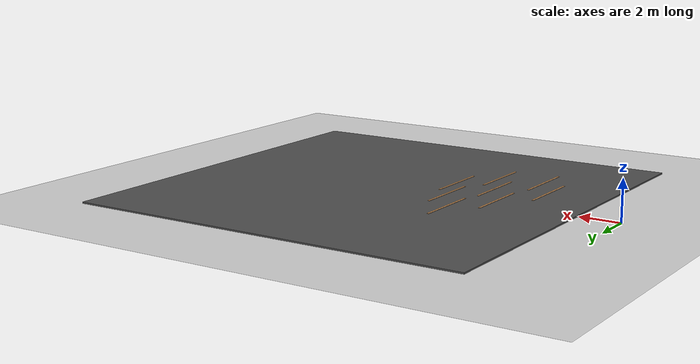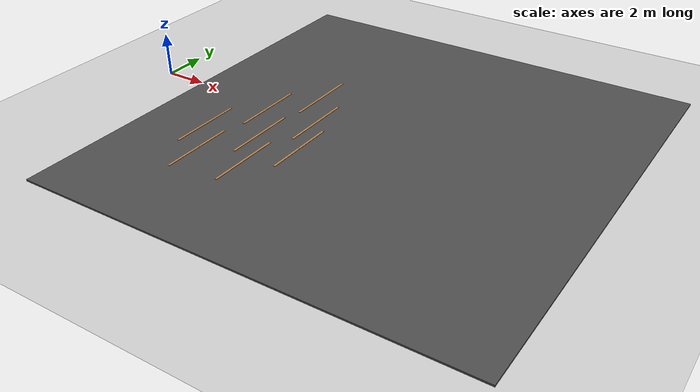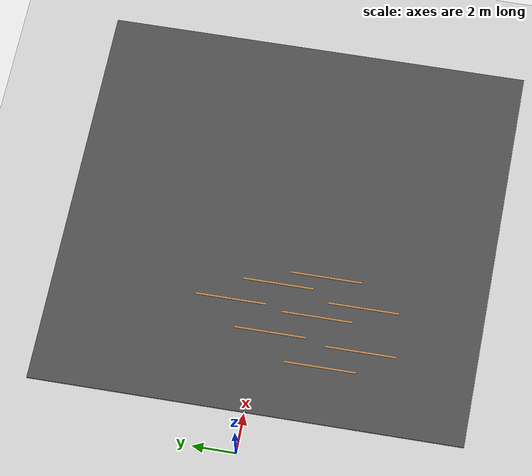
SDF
<sdf version="1.7">
 <world name="default">
  <model name="ground_plane">
   <static>1</static>
   <link name="link">
    <collision name="collision">
     <geometry><plane><normal>0 0 1</normal><size>100 100</size></plane></geometry>
     <surface><friction><ode><mu>100</mu><mu2>50</mu2></ode></friction></surface>
    </collision>
    <visual name="visual">
     <cast_shadows>0</cast_shadows>
     <geometry><plane><normal>0 0 1</normal><size>100 100</size></plane></geometry>
     <material>
      <script><uri>file://media/materials/scripts/gazebo.material</uri><name>Gazebo/Grey</name></script>
     </material>
    </visual>
   </link>
  </model>
  <model name="asphalt_plane">
   <static>1</static>
   <link name="link">
    <collision name="collision"><geometry><box><size>20 20 0.1</size></box></geometry></collision>
    <visual name="visual">
     <cast_shadows>0</cast_shadows>
     <geometry><box><size>20 20 0.1</size></box></geometry>
     <material>
      <script>
       <uri>model://asphalt_plane/materials/scripts</uri>
       <uri>model://asphalt_plane/materials/textures</uri>
       <name>vrc/asphalt</name>
      </script>
     </material>
    </visual>
   </link>
   <pose>12.0553 0.030976 0 0 -0 0</pose>
  </model>
  <model name="wooden_board4">
   <link name="base">
    <pose>-0 -0 0.00523 0 -0 0</pose>
    <inertial>
     <mass>0.2765</mass>
     <inertia>
      <ixx>0.0025148</ixx>
      <ixy>0</ixy>
      <ixz>0</ixz>
      <iyy>0.00024037</iyy>
      <iyz>0</iyz>
      <izz>0.00275013</izz>
     </inertia>
    </inertial>
    <visual name="visual">
     <geometry><box><size>0.1016 3.3302 0.02046</size></box></geometry>
     <material>
      <script><uri>file://media/materials/scripts/gazebo.material</uri><name>Gazebo/Wood</name></script>
      <shader type="pixel"><normal_map>__default__</normal_map></shader>
      <ambient>1 1 1 1</ambient>
      <diffuse>1 1 1 1</diffuse>
      <specular>0.2 0.2 0.2 1</specular>
      <emissive>0 0 0 1</emissive>
     </material>
    </visual>
    <visual name="tee_nut_1">
     <pose>0 -0.116 0 0 -0 0</pose>
     <geometry><cylinder><radius>0.00635</radius><length>0.020565</length></cylinder></geometry>
     <material>
      <script><uri>file://media/materials/scripts/gazebo.material</uri><name>Gazebo/Grey</name></script>
      <shader type="pixel"><normal_map>__default__</normal_map></shader>
      <ambient>0.3 0.3 0.3 1</ambient>
      <diffuse>0.7 0.7 0.7 1</diffuse>
      <specular>0.01 0.01 0.01 1</specular>
      <emissive>0 0 0 1</emissive>
     </material>
    </visual>
    <visual name="tee_nut_3">
     <pose>0 0.038 0 0 -0 0</pose>
     <geometry><cylinder><radius>0.00635</radius><length>0.020565</length></cylinder></geometry>
     <material>
      <script><uri>file://media/materials/scripts/gazebo.material</uri><name>Gazebo/Grey</name></script>
      <shader type="pixel"><normal_map>__default__</normal_map></shader>
      <ambient>0.3 0.3 0.3 1</ambient>
      <diffuse>0.7 0.7 0.7 1</diffuse>
      <specular>0.01 0.01 0.01 1</specular>
      <emissive>0 0 0 1</emissive>
     </material>
    </visual>
    <visual name="tee_nut_2">
     <pose>0 -0.038 0 0 -0 0</pose>
     <geometry><cylinder><radius>0.00635</radius><length>0.020565</length></cylinder></geometry>
     <material>
      <script><uri>file://media/materials/scripts/gazebo.material</uri><name>Gazebo/Grey</name></script>
      <shader type="pixel"><normal_map>__default__</normal_map></shader>
      <ambient>0.3 0.3 0.3 1</ambient>
      <diffuse>0.7 0.7 0.7 1</diffuse>
      <specular>0.01 0.01 0.01 1</specular>
      <emissive>0 0 0 1</emissive>
     </material>
    </visual>
    <visual name="tee_nut_4">
     <pose>0 0.116 0 0 -0 0</pose>
     <geometry><cylinder><radius>0.00635</radius><length>0.020565</length></cylinder></geometry>
     <material>
      <script><uri>file://media/materials/scripts/gazebo.material</uri><name>Gazebo/Grey</name></script>
      <shader type="pixel"><normal_map>__default__</normal_map></shader>
      <ambient>0.3 0.3 0.3 1</ambient>
      <diffuse>0.7 0.7 0.7 1</diffuse>
      <specular>0.01 0.01 0.01 1</specular>
      <emissive>0 0 0 1</emissive>
     </material>
    </visual>
    <collision name="collision">
     <geometry><box><size>0.1016 0.3302 0.04046</size></box></geometry>
     <surface>
      <friction>
       <ode><mu>1</mu><mu2>1</mu2><fdir1>0 0 0</fdir1><slip1>0</slip1><slip2>0</slip2></ode>
       <torsional>
        <coefficient>1</coefficient>
        <patch_radius>0</patch_radius>
        <surface_radius>0.01</surface_radius>
        <use_patch_radius>0</use_patch_radius>
        <ode><slip>0</slip></ode>
       </torsional>
      </friction>
      <bounce><restitution_coefficient>0</restitution_coefficient><threshold>1e+06</threshold></bounce>
      <contact>
       <collide_without_contact>0</collide_without_contact>
       <collide_without_contact_bitmask>1</collide_without_contact_bitmask>
       <collide_bitmask>1</collide_bitmask>
       <ode>
        <soft_cfm>0</soft_cfm>
        <soft_erp>0.2</soft_erp>
        <kp>100000</kp>
        <kd>100</kd>
        <max_vel>100</max_vel>
        <min_depth>0.001</min_depth>
       </ode>
       <bullet>
        <split_impulse>1</split_impulse>
        <split_impulse_penetration_threshold>-0.01</split_impulse_penetration_threshold>
        <soft_cfm>0</soft_cfm>
        <soft_erp>0.2</soft_erp>
        <kp>100000</kp>
        <kd>100</kd>
       </bullet>
      </contact>
     </surface>
    </collision>
   </link>
   <static>0</static>
   <pose>4.89768 -2.95722 0.063993 0 -0 2.5e-05</pose>
  </model>
  <model name="wooden_board4_1">
   <link name="base">
    <pose>-0 -0 0.00523 0 -0 0</pose>
    <inertial>
     <mass>0.2765</mass>
     <inertia>
      <ixx>0.0025148</ixx>
      <ixy>0</ixy>
      <ixz>0</ixz>
      <iyy>0.00024037</iyy>
      <iyz>0</iyz>
      <izz>0.00275013</izz>
     </inertia>
    </inertial>
    <visual name="visual">
     <geometry><box><size>0.1016 3.3302 0.02046</size></box></geometry>
     <material>
      <script><uri>file://media/materials/scripts/gazebo.material</uri><name>Gazebo/Wood</name></script>
      <shader type="pixel"><normal_map>__default__</normal_map></shader>
      <ambient>1 1 1 1</ambient>
      <diffuse>1 1 1 1</diffuse>
      <specular>0.2 0.2 0.2 1</specular>
      <emissive>0 0 0 1</emissive>
     </material>
    </visual>
    <visual name="tee_nut_1">
     <pose>0 -0.116 0 0 -0 0</pose>
     <geometry><cylinder><radius>0.00635</radius><length>0.020565</length></cylinder></geometry>
     <material>
      <script><uri>file://media/materials/scripts/gazebo.material</uri><name>Gazebo/Grey</name></script>
      <shader type="pixel"><normal_map>__default__</normal_map></shader>
      <ambient>0.3 0.3 0.3 1</ambient>
      <diffuse>0.7 0.7 0.7 1</diffuse>
      <specular>0.01 0.01 0.01 1</specular>
      <emissive>0 0 0 1</emissive>
     </material>
    </visual>
    <visual name="tee_nut_3">
     <pose>0 0.038 0 0 -0 0</pose>
     <geometry><cylinder><radius>0.00635</radius><length>0.020565</length></cylinder></geometry>
     <material>
      <script><uri>file://media/materials/scripts/gazebo.material</uri><name>Gazebo/Grey</name></script>
      <shader type="pixel"><normal_map>__default__</normal_map></shader>
      <ambient>0.3 0.3 0.3 1</ambient>
      <diffuse>0.7 0.7 0.7 1</diffuse>
      <specular>0.01 0.01 0.01 1</specular>
      <emissive>0 0 0 1</emissive>
     </material>
    </visual>
    <visual name="tee_nut_2">
     <pose>0 -0.038 0 0 -0 0</pose>
     <geometry><cylinder><radius>0.00635</radius><length>0.020565</length></cylinder></geometry>
     <material>
      <script><uri>file://media/materials/scripts/gazebo.material</uri><name>Gazebo/Grey</name></script>
      <shader type="pixel"><normal_map>__default__</normal_map></shader>
      <ambient>0.3 0.3 0.3 1</ambient>
      <diffuse>0.7 0.7 0.7 1</diffuse>
      <specular>0.01 0.01 0.01 1</specular>
      <emissive>0 0 0 1</emissive>
     </material>
    </visual>
    <visual name="tee_nut_4">
     <pose>0 0.116 0 0 -0 0</pose>
     <geometry><cylinder><radius>0.00635</radius><length>0.020565</length></cylinder></geometry>
     <material>
      <script><uri>file://media/materials/scripts/gazebo.material</uri><name>Gazebo/Grey</name></script>
      <shader type="pixel"><normal_map>__default__</normal_map></shader>
      <ambient>0.3 0.3 0.3 1</ambient>
      <diffuse>0.7 0.7 0.7 1</diffuse>
      <specular>0.01 0.01 0.01 1</specular>
      <emissive>0 0 0 1</emissive>
     </material>
    </visual>
    <collision name="collision">
     <geometry><box><size>0.1016 0.3302 0.04046</size></box></geometry>
     <surface>
      <friction>
       <ode><mu>1</mu><mu2>1</mu2><fdir1>0 0 0</fdir1><slip1>0</slip1><slip2>0</slip2></ode>
       <torsional>
        <coefficient>1</coefficient>
        <patch_radius>0</patch_radius>
        <surface_radius>0.01</surface_radius>
        <use_patch_radius>0</use_patch_radius>
        <ode><slip>0</slip></ode>
       </torsional>
      </friction>
      <bounce><restitution_coefficient>0</restitution_coefficient><threshold>1e+06</threshold></bounce>
      <contact>
       <collide_without_contact>0</collide_without_contact>
       <collide_without_contact_bitmask>1</collide_without_contact_bitmask>
       <collide_bitmask>1</collide_bitmask>
       <ode>
        <soft_cfm>0</soft_cfm>
        <soft_erp>0.2</soft_erp>
        <kp>100000</kp>
        <kd>100</kd>
        <max_vel>100</max_vel>
        <min_depth>0.001</min_depth>
       </ode>
       <bullet>
        <split_impulse>1</split_impulse>
        <split_impulse_penetration_threshold>-0.01</split_impulse_penetration_threshold>
        <soft_cfm>0</soft_cfm>
        <soft_erp>0.2</soft_erp>
        <kp>100000</kp>
        <kd>100</kd>
       </bullet>
      </contact>
     </surface>
    </collision>
   </link>
   <static>0</static>
   <pose>6.2785 -0.414987 0.063993 0 -0 2.5e-05</pose>
  </model>
  <model name="wooden_board4_4">
   <link name="base">
    <pose>-0 -0 0.00523 0 -0 0</pose>
    <inertial>
     <mass>0.2765</mass>
     <inertia>
      <ixx>0.0025148</ixx>
      <ixy>0</ixy>
      <ixz>0</ixz>
      <iyy>0.00024037</iyy>
      <iyz>0</iyz>
      <izz>0.00275013</izz>
     </inertia>
    </inertial>
    <visual name="visual">
     <geometry><box><size>0.1016 3.3302 0.02046</size></box></geometry>
     <material>
      <script><uri>file://media/materials/scripts/gazebo.material</uri><name>Gazebo/Wood</name></script>
      <shader type="pixel"><normal_map>__default__</normal_map></shader>
      <ambient>1 1 1 1</ambient>
      <diffuse>1 1 1 1</diffuse>
      <specular>0.2 0.2 0.2 1</specular>
      <emissive>0 0 0 1</emissive>
     </material>
    </visual>
    <visual name="tee_nut_1">
     <pose>0 -0.116 0 0 -0 0</pose>
     <geometry><cylinder><radius>0.00635</radius><length>0.020565</length></cylinder></geometry>
     <material>
      <script><uri>file://media/materials/scripts/gazebo.material</uri><name>Gazebo/Grey</name></script>
      <shader type="pixel"><normal_map>__default__</normal_map></shader>
      <ambient>0.3 0.3 0.3 1</ambient>
      <diffuse>0.7 0.7 0.7 1</diffuse>
      <specular>0.01 0.01 0.01 1</specular>
      <emissive>0 0 0 1</emissive>
     </material>
    </visual>
    <visual name="tee_nut_3">
     <pose>0 0.038 0 0 -0 0</pose>
     <geometry><cylinder><radius>0.00635</radius><length>0.020565</length></cylinder></geometry>
     <material>
      <script><uri>file://media/materials/scripts/gazebo.material</uri><name>Gazebo/Grey</name></script>
      <shader type="pixel"><normal_map>__default__</normal_map></shader>
      <ambient>0.3 0.3 0.3 1</ambient>
      <diffuse>0.7 0.7 0.7 1</diffuse>
      <specular>0.01 0.01 0.01 1</specular>
      <emissive>0 0 0 1</emissive>
     </material>
    </visual>
    <visual name="tee_nut_2">
     <pose>0 -0.038 0 0 -0 0</pose>
     <geometry><cylinder><radius>0.00635</radius><length>0.020565</length></cylinder></geometry>
     <material>
      <script><uri>file://media/materials/scripts/gazebo.material</uri><name>Gazebo/Grey</name></script>
      <shader type="pixel"><normal_map>__default__</normal_map></shader>
      <ambient>0.3 0.3 0.3 1</ambient>
      <diffuse>0.7 0.7 0.7 1</diffuse>
      <specular>0.01 0.01 0.01 1</specular>
      <emissive>0 0 0 1</emissive>
     </material>
    </visual>
    <visual name="tee_nut_4">
     <pose>0 0.116 0 0 -0 0</pose>
     <geometry><cylinder><radius>0.00635</radius><length>0.020565</length></cylinder></geometry>
     <material>
      <script><uri>file://media/materials/scripts/gazebo.material</uri><name>Gazebo/Grey</name></script>
      <shader type="pixel"><normal_map>__default__</normal_map></shader>
      <ambient>0.3 0.3 0.3 1</ambient>
      <diffuse>0.7 0.7 0.7 1</diffuse>
      <specular>0.01 0.01 0.01 1</specular>
      <emissive>0 0 0 1</emissive>
     </material>
    </visual>
    <collision name="collision">
     <geometry><box><size>0.1016 0.3302 0.04046</size></box></geometry>
     <surface>
      <friction>
       <ode><mu>1</mu><mu2>1</mu2><fdir1>0 0 0</fdir1><slip1>0</slip1><slip2>0</slip2></ode>
       <torsional>
        <coefficient>1</coefficient>
        <patch_radius>0</patch_radius>
        <surface_radius>0.01</surface_radius>
        <use_patch_radius>0</use_patch_radius>
        <ode><slip>0</slip></ode>
       </torsional>
      </friction>
      <bounce><restitution_coefficient>0</restitution_coefficient><threshold>1e+06</threshold></bounce>
      <contact>
       <collide_without_contact>0</collide_without_contact>
       <collide_without_contact_bitmask>1</collide_without_contact_bitmask>
       <collide_bitmask>1</collide_bitmask>
       <ode>
        <soft_cfm>0</soft_cfm>
        <soft_erp>0.2</soft_erp>
        <kp>100000</kp>
        <kd>100</kd>
        <max_vel>100</max_vel>
        <min_depth>0.001</min_depth>
       </ode>
       <bullet>
        <split_impulse>1</split_impulse>
        <split_impulse_penetration_threshold>-0.01</split_impulse_penetration_threshold>
        <soft_cfm>0</soft_cfm>
        <soft_erp>0.2</soft_erp>
        <kp>100000</kp>
        <kd>100</kd>
       </bullet>
      </contact>
     </surface>
    </collision>
   </link>
   <static>0</static>
   <pose>5.99368 -4.64442 0.063993 0 -0 2.5e-05</pose>
  </model>
  <model name="wooden_board4_5">
   <link name="base">
    <pose>-0 -0 0.00523 0 -0 0</pose>
    <inertial>
     <mass>0.2765</mass>
     <inertia>
      <ixx>0.0025148</ixx>
      <ixy>0</ixy>
      <ixz>0</ixz>
      <iyy>0.00024037</iyy>
      <iyz>0</iyz>
      <izz>0.00275013</izz>
     </inertia>
    </inertial>
    <visual name="visual">
     <geometry><box><size>0.1016 3.3302 0.02046</size></box></geometry>
     <material>
      <script><uri>file://media/materials/scripts/gazebo.material</uri><name>Gazebo/Wood</name></script>
      <shader type="pixel"><normal_map>__default__</normal_map></shader>
      <ambient>1 1 1 1</ambient>
      <diffuse>1 1 1 1</diffuse>
      <specular>0.2 0.2 0.2 1</specular>
      <emissive>0 0 0 1</emissive>
     </material>
    </visual>
    <visual name="tee_nut_1">
     <pose>0 -0.116 0 0 -0 0</pose>
     <geometry><cylinder><radius>0.00635</radius><length>0.020565</length></cylinder></geometry>
     <material>
      <script><uri>file://media/materials/scripts/gazebo.material</uri><name>Gazebo/Grey</name></script>
      <shader type="pixel"><normal_map>__default__</normal_map></shader>
      <ambient>0.3 0.3 0.3 1</ambient>
      <diffuse>0.7 0.7 0.7 1</diffuse>
      <specular>0.01 0.01 0.01 1</specular>
      <emissive>0 0 0 1</emissive>
     </material>
    </visual>
    <visual name="tee_nut_3">
     <pose>0 0.038 0 0 -0 0</pose>
     <geometry><cylinder><radius>0.00635</radius><length>0.020565</length></cylinder></geometry>
     <material>
      <script><uri>file://media/materials/scripts/gazebo.material</uri><name>Gazebo/Grey</name></script>
      <shader type="pixel"><normal_map>__default__</normal_map></shader>
      <ambient>0.3 0.3 0.3 1</ambient>
      <diffuse>0.7 0.7 0.7 1</diffuse>
      <specular>0.01 0.01 0.01 1</specular>
      <emissive>0 0 0 1</emissive>
     </material>
    </visual>
    <visual name="tee_nut_2">
     <pose>0 -0.038 0 0 -0 0</pose>
     <geometry><cylinder><radius>0.00635</radius><length>0.020565</length></cylinder></geometry>
     <material>
      <script><uri>file://media/materials/scripts/gazebo.material</uri><name>Gazebo/Grey</name></script>
      <shader type="pixel"><normal_map>__default__</normal_map></shader>
      <ambient>0.3 0.3 0.3 1</ambient>
      <diffuse>0.7 0.7 0.7 1</diffuse>
      <specular>0.01 0.01 0.01 1</specular>
      <emissive>0 0 0 1</emissive>
     </material>
    </visual>
    <visual name="tee_nut_4">
     <pose>0 0.116 0 0 -0 0</pose>
     <geometry><cylinder><radius>0.00635</radius><length>0.020565</length></cylinder></geometry>
     <material>
      <script><uri>file://media/materials/scripts/gazebo.material</uri><name>Gazebo/Grey</name></script>
      <shader type="pixel"><normal_map>__default__</normal_map></shader>
      <ambient>0.3 0.3 0.3 1</ambient>
      <diffuse>0.7 0.7 0.7 1</diffuse>
      <specular>0.01 0.01 0.01 1</specular>
      <emissive>0 0 0 1</emissive>
     </material>
    </visual>
    <collision name="collision">
     <geometry><box><size>0.1016 0.3302 0.04046</size></box></geometry>
     <surface>
      <friction>
       <ode><mu>1</mu><mu2>1</mu2><fdir1>0 0 0</fdir1><slip1>0</slip1><slip2>0</slip2></ode>
       <torsional>
        <coefficient>1</coefficient>
        <patch_radius>0</patch_radius>
        <surface_radius>0.01</surface_radius>
        <use_patch_radius>0</use_patch_radius>
        <ode><slip>0</slip></ode>
       </torsional>
      </friction>
      <bounce><restitution_coefficient>0</restitution_coefficient><threshold>1e+06</threshold></bounce>
      <contact>
       <collide_without_contact>0</collide_without_contact>
       <collide_without_contact_bitmask>1</collide_without_contact_bitmask>
       <collide_bitmask>1</collide_bitmask>
       <ode>
        <soft_cfm>0</soft_cfm>
        <soft_erp>0.2</soft_erp>
        <kp>100000</kp>
        <kd>100</kd>
        <max_vel>100</max_vel>
        <min_depth>0.001</min_depth>
       </ode>
       <bullet>
        <split_impulse>1</split_impulse>
        <split_impulse_penetration_threshold>-0.01</split_impulse_penetration_threshold>
        <soft_cfm>0</soft_cfm>
        <soft_erp>0.2</soft_erp>
        <kp>100000</kp>
        <kd>100</kd>
       </bullet>
      </contact>
     </surface>
    </collision>
   </link>
   <static>0</static>
   <pose>7.4396 -2.38898 0.063993 0 -0 2.5e-05</pose>
  </model>
  <model name="wooden_board4_6">
   <link name="base">
    <pose>-0 -0 0.00523 0 -0 0</pose>
    <inertial>
     <mass>0.2765</mass>
     <inertia>
      <ixx>0.0025148</ixx>
      <ixy>0</ixy>
      <ixz>0</ixz>
      <iyy>0.00024037</iyy>
      <iyz>0</iyz>
      <izz>0.00275013</izz>
     </inertia>
    </inertial>
    <visual name="visual">
     <geometry><box><size>0.1016 3.3302 0.02046</size></box></geometry>
     <material>
      <script><uri>file://media/materials/scripts/gazebo.material</uri><name>Gazebo/Wood</name></script>
      <shader type="pixel"><normal_map>__default__</normal_map></shader>
      <ambient>1 1 1 1</ambient>
      <diffuse>1 1 1 1</diffuse>
      <specular>0.2 0.2 0.2 1</specular>
      <emissive>0 0 0 1</emissive>
     </material>
    </visual>
    <visual name="tee_nut_1">
     <pose>0 -0.116 0 0 -0 0</pose>
     <geometry><cylinder><radius>0.00635</radius><length>0.020565</length></cylinder></geometry>
     <material>
      <script><uri>file://media/materials/scripts/gazebo.material</uri><name>Gazebo/Grey</name></script>
      <shader type="pixel"><normal_map>__default__</normal_map></shader>
      <ambient>0.3 0.3 0.3 1</ambient>
      <diffuse>0.7 0.7 0.7 1</diffuse>
      <specular>0.01 0.01 0.01 1</specular>
      <emissive>0 0 0 1</emissive>
     </material>
    </visual>
    <visual name="tee_nut_3">
     <pose>0 0.038 0 0 -0 0</pose>
     <geometry><cylinder><radius>0.00635</radius><length>0.020565</length></cylinder></geometry>
     <material>
      <script><uri>file://media/materials/scripts/gazebo.material</uri><name>Gazebo/Grey</name></script>
      <shader type="pixel"><normal_map>__default__</normal_map></shader>
      <ambient>0.3 0.3 0.3 1</ambient>
      <diffuse>0.7 0.7 0.7 1</diffuse>
      <specular>0.01 0.01 0.01 1</specular>
      <emissive>0 0 0 1</emissive>
     </material>
    </visual>
    <visual name="tee_nut_2">
     <pose>0 -0.038 0 0 -0 0</pose>
     <geometry><cylinder><radius>0.00635</radius><length>0.020565</length></cylinder></geometry>
     <material>
      <script><uri>file://media/materials/scripts/gazebo.material</uri><name>Gazebo/Grey</name></script>
      <shader type="pixel"><normal_map>__default__</normal_map></shader>
      <ambient>0.3 0.3 0.3 1</ambient>
      <diffuse>0.7 0.7 0.7 1</diffuse>
      <specular>0.01 0.01 0.01 1</specular>
      <emissive>0 0 0 1</emissive>
     </material>
    </visual>
    <visual name="tee_nut_4">
     <pose>0 0.116 0 0 -0 0</pose>
     <geometry><cylinder><radius>0.00635</radius><length>0.020565</length></cylinder></geometry>
     <material>
      <script><uri>file://media/materials/scripts/gazebo.material</uri><name>Gazebo/Grey</name></script>
      <shader type="pixel"><normal_map>__default__</normal_map></shader>
      <ambient>0.3 0.3 0.3 1</ambient>
      <diffuse>0.7 0.7 0.7 1</diffuse>
      <specular>0.01 0.01 0.01 1</specular>
      <emissive>0 0 0 1</emissive>
     </material>
    </visual>
    <collision name="collision">
     <geometry><box><size>0.1016 0.3302 0.04046</size></box></geometry>
     <surface>
      <friction>
       <ode><mu>1</mu><mu2>1</mu2><fdir1>0 0 0</fdir1><slip1>0</slip1><slip2>0</slip2></ode>
       <torsional>
        <coefficient>1</coefficient>
        <patch_radius>0</patch_radius>
        <surface_radius>0.01</surface_radius>
        <use_patch_radius>0</use_patch_radius>
        <ode><slip>0</slip></ode>
       </torsional>
      </friction>
      <bounce><restitution_coefficient>0</restitution_coefficient><threshold>1e+06</threshold></bounce>
      <contact>
       <collide_without_contact>0</collide_without_contact>
       <collide_without_contact_bitmask>1</collide_without_contact_bitmask>
       <collide_bitmask>1</collide_bitmask>
       <ode>
        <soft_cfm>0</soft_cfm>
        <soft_erp>0.2</soft_erp>
        <kp>100000</kp>
        <kd>100</kd>
        <max_vel>100</max_vel>
        <min_depth>0.001</min_depth>
       </ode>
       <bullet>
        <split_impulse>1</split_impulse>
        <split_impulse_penetration_threshold>-0.01</split_impulse_penetration_threshold>
        <soft_cfm>0</soft_cfm>
        <soft_erp>0.2</soft_erp>
        <kp>100000</kp>
        <kd>100</kd>
       </bullet>
      </contact>
     </surface>
    </collision>
   </link>
   <static>0</static>
   <pose>7.6964 1.67889 0.063993 0 -0 2.5e-05</pose>
  </model>
  <model name="wooden_board4_8">
   <link name="base">
    <pose>-0 -0 0.00523 0 -0 0</pose>
    <inertial>
     <mass>0.2765</mass>
     <inertia>
      <ixx>0.0025148</ixx>
      <ixy>0</ixy>
      <ixz>0</ixz>
      <iyy>0.00024037</iyy>
      <iyz>0</iyz>
      <izz>0.00275013</izz>
     </inertia>
    </inertial>
    <visual name="visual">
     <geometry><box><size>0.1016 3.3302 0.02046</size></box></geometry>
     <material>
      <script><uri>file://media/materials/scripts/gazebo.material</uri><name>Gazebo/Wood</name></script>
      <shader type="pixel"><normal_map>__default__</normal_map></shader>
      <ambient>1 1 1 1</ambient>
      <diffuse>1 1 1 1</diffuse>
      <specular>0.2 0.2 0.2 1</specular>
      <emissive>0 0 0 1</emissive>
     </material>
    </visual>
    <visual name="tee_nut_1">
     <pose>0 -0.116 0 0 -0 0</pose>
     <geometry><cylinder><radius>0.00635</radius><length>0.020565</length></cylinder></geometry>
     <material>
      <script><uri>file://media/materials/scripts/gazebo.material</uri><name>Gazebo/Grey</name></script>
      <shader type="pixel"><normal_map>__default__</normal_map></shader>
      <ambient>0.3 0.3 0.3 1</ambient>
      <diffuse>0.7 0.7 0.7 1</diffuse>
      <specular>0.01 0.01 0.01 1</specular>
      <emissive>0 0 0 1</emissive>
     </material>
    </visual>
    <visual name="tee_nut_3">
     <pose>0 0.038 0 0 -0 0</pose>
     <geometry><cylinder><radius>0.00635</radius><length>0.020565</length></cylinder></geometry>
     <material>
      <script><uri>file://media/materials/scripts/gazebo.material</uri><name>Gazebo/Grey</name></script>
      <shader type="pixel"><normal_map>__default__</normal_map></shader>
      <ambient>0.3 0.3 0.3 1</ambient>
      <diffuse>0.7 0.7 0.7 1</diffuse>
      <specular>0.01 0.01 0.01 1</specular>
      <emissive>0 0 0 1</emissive>
     </material>
    </visual>
    <visual name="tee_nut_2">
     <pose>0 -0.038 0 0 -0 0</pose>
     <geometry><cylinder><radius>0.00635</radius><length>0.020565</length></cylinder></geometry>
     <material>
      <script><uri>file://media/materials/scripts/gazebo.material</uri><name>Gazebo/Grey</name></script>
      <shader type="pixel"><normal_map>__default__</normal_map></shader>
      <ambient>0.3 0.3 0.3 1</ambient>
      <diffuse>0.7 0.7 0.7 1</diffuse>
      <specular>0.01 0.01 0.01 1</specular>
      <emissive>0 0 0 1</emissive>
     </material>
    </visual>
    <visual name="tee_nut_4">
     <pose>0 0.116 0 0 -0 0</pose>
     <geometry><cylinder><radius>0.00635</radius><length>0.020565</length></cylinder></geometry>
     <material>
      <script><uri>file://media/materials/scripts/gazebo.material</uri><name>Gazebo/Grey</name></script>
      <shader type="pixel"><normal_map>__default__</normal_map></shader>
      <ambient>0.3 0.3 0.3 1</ambient>
      <diffuse>0.7 0.7 0.7 1</diffuse>
      <specular>0.01 0.01 0.01 1</specular>
      <emissive>0 0 0 1</emissive>
     </material>
    </visual>
    <collision name="collision">
     <geometry><box><size>0.1016 0.3302 0.04046</size></box></geometry>
     <surface>
      <friction>
       <ode><mu>1</mu><mu2>1</mu2><fdir1>0 0 0</fdir1><slip1>0</slip1><slip2>0</slip2></ode>
       <torsional>
        <coefficient>1</coefficient>
        <patch_radius>0</patch_radius>
        <surface_radius>0.01</surface_radius>
        <use_patch_radius>0</use_patch_radius>
        <ode><slip>0</slip></ode>
       </torsional>
      </friction>
      <bounce><restitution_coefficient>0</restitution_coefficient><threshold>1e+06</threshold></bounce>
      <contact>
       <collide_without_contact>0</collide_without_contact>
       <collide_without_contact_bitmask>1</collide_without_contact_bitmask>
       <collide_bitmask>1</collide_bitmask>
       <ode>
        <soft_cfm>0</soft_cfm>
        <soft_erp>0.2</soft_erp>
        <kp>100000</kp>
        <kd>100</kd>
        <max_vel>100</max_vel>
        <min_depth>0.001</min_depth>
       </ode>
       <bullet>
        <split_impulse>1</split_impulse>
        <split_impulse_penetration_threshold>-0.01</split_impulse_penetration_threshold>
        <soft_cfm>0</soft_cfm>
        <soft_erp>0.2</soft_erp>
        <kp>100000</kp>
        <kd>100</kd>
       </bullet>
      </contact>
     </surface>
    </collision>
   </link>
   <static>0</static>
   <pose>8.25494 -4.41197 0.063993 0 -0 2.5e-05</pose>
  </model>
  <model name="wooden_board4_10">
   <link name="base">
    <pose>-0 -0 0.00523 0 -0 0</pose>
    <inertial>
     <mass>0.2765</mass>
     <inertia>
      <ixx>0.0025148</ixx>
      <ixy>0</ixy>
      <ixz>0</ixz>
      <iyy>0.00024037</iyy>
      <iyz>0</iyz>
      <izz>0.00275013</izz>
     </inertia>
    </inertial>
    <visual name="visual">
     <geometry><box><size>0.1016 3.3302 0.02046</size></box></geometry>
     <material>
      <script><uri>file://media/materials/scripts/gazebo.material</uri><name>Gazebo/Wood</name></script>
      <shader type="pixel"><normal_map>__default__</normal_map></shader>
      <ambient>1 1 1 1</ambient>
      <diffuse>1 1 1 1</diffuse>
      <specular>0.2 0.2 0.2 1</specular>
      <emissive>0 0 0 1</emissive>
     </material>
    </visual>
    <visual name="tee_nut_1">
     <pose>0 -0.116 0 0 -0 0</pose>
     <geometry><cylinder><radius>0.00635</radius><length>0.020565</length></cylinder></geometry>
     <material>
      <script><uri>file://media/materials/scripts/gazebo.material</uri><name>Gazebo/Grey</name></script>
      <shader type="pixel"><normal_map>__default__</normal_map></shader>
      <ambient>0.3 0.3 0.3 1</ambient>
      <diffuse>0.7 0.7 0.7 1</diffuse>
      <specular>0.01 0.01 0.01 1</specular>
      <emissive>0 0 0 1</emissive>
     </material>
    </visual>
    <visual name="tee_nut_3">
     <pose>0 0.038 0 0 -0 0</pose>
     <geometry><cylinder><radius>0.00635</radius><length>0.020565</length></cylinder></geometry>
     <material>
      <script><uri>file://media/materials/scripts/gazebo.material</uri><name>Gazebo/Grey</name></script>
      <shader type="pixel"><normal_map>__default__</normal_map></shader>
      <ambient>0.3 0.3 0.3 1</ambient>
      <diffuse>0.7 0.7 0.7 1</diffuse>
      <specular>0.01 0.01 0.01 1</specular>
      <emissive>0 0 0 1</emissive>
     </material>
    </visual>
    <visual name="tee_nut_2">
     <pose>0 -0.038 0 0 -0 0</pose>
     <geometry><cylinder><radius>0.00635</radius><length>0.020565</length></cylinder></geometry>
     <material>
      <script><uri>file://media/materials/scripts/gazebo.material</uri><name>Gazebo/Grey</name></script>
      <shader type="pixel"><normal_map>__default__</normal_map></shader>
      <ambient>0.3 0.3 0.3 1</ambient>
      <diffuse>0.7 0.7 0.7 1</diffuse>
      <specular>0.01 0.01 0.01 1</specular>
      <emissive>0 0 0 1</emissive>
     </material>
    </visual>
    <visual name="tee_nut_4">
     <pose>0 0.116 0 0 -0 0</pose>
     <geometry><cylinder><radius>0.00635</radius><length>0.020565</length></cylinder></geometry>
     <material>
      <script><uri>file://media/materials/scripts/gazebo.material</uri><name>Gazebo/Grey</name></script>
      <shader type="pixel"><normal_map>__default__</normal_map></shader>
      <ambient>0.3 0.3 0.3 1</ambient>
      <diffuse>0.7 0.7 0.7 1</diffuse>
      <specular>0.01 0.01 0.01 1</specular>
      <emissive>0 0 0 1</emissive>
     </material>
    </visual>
    <collision name="collision">
     <geometry><box><size>0.1016 0.3302 0.04046</size></box></geometry>
     <surface>
      <friction>
       <ode><mu>1</mu><mu2>1</mu2><fdir1>0 0 0</fdir1><slip1>0</slip1><slip2>0</slip2></ode>
       <torsional>
        <coefficient>1</coefficient>
        <patch_radius>0</patch_radius>
        <surface_radius>0.01</surface_radius>
        <use_patch_radius>0</use_patch_radius>
        <ode><slip>0</slip></ode>
       </torsional>
      </friction>
      <bounce><restitution_coefficient>0</restitution_coefficient><threshold>1e+06</threshold></bounce>
      <contact>
       <collide_without_contact>0</collide_without_contact>
       <collide_without_contact_bitmask>1</collide_without_contact_bitmask>
       <collide_bitmask>1</collide_bitmask>
       <ode>
        <soft_cfm>0</soft_cfm>
        <soft_erp>0.2</soft_erp>
        <kp>100000</kp>
        <kd>100</kd>
        <max_vel>100</max_vel>
        <min_depth>0.001</min_depth>
       </ode>
       <bullet>
        <split_impulse>1</split_impulse>
        <split_impulse_penetration_threshold>-0.01</split_impulse_penetration_threshold>
        <soft_cfm>0</soft_cfm>
        <soft_erp>0.2</soft_erp>
        <kp>100000</kp>
        <kd>100</kd>
       </bullet>
      </contact>
     </surface>
    </collision>
   </link>
   <static>0</static>
   <pose>8.86169 -0.337993 0.063993 0 -0 2.5e-05</pose>
  </model>
  <model name="wooden_board4_13">
   <link name="base">
    <pose>-0 -0 0.00523 0 -0 0</pose>
    <inertial>
     <mass>0.2765</mass>
     <inertia>
      <ixx>0.0025148</ixx>
      <ixy>0</ixy>
      <ixz>0</ixz>
      <iyy>0.00024037</iyy>
      <iyz>0</iyz>
      <izz>0.00275013</izz>
     </inertia>
    </inertial>
    <visual name="visual">
     <geometry><box><size>0.1016 3.3302 0.02046</size></box></geometry>
     <material>
      <script><uri>file://media/materials/scripts/gazebo.material</uri><name>Gazebo/Wood</name></script>
      <shader type="pixel"><normal_map>__default__</normal_map></shader>
      <ambient>1 1 1 1</ambient>
      <diffuse>1 1 1 1</diffuse>
      <specular>0.2 0.2 0.2 1</specular>
      <emissive>0 0 0 1</emissive>
     </material>
    </visual>
    <visual name="tee_nut_1">
     <pose>0 -0.116 0 0 -0 0</pose>
     <geometry><cylinder><radius>0.00635</radius><length>0.020565</length></cylinder></geometry>
     <material>
      <script><uri>file://media/materials/scripts/gazebo.material</uri><name>Gazebo/Grey</name></script>
      <shader type="pixel"><normal_map>__default__</normal_map></shader>
      <ambient>0.3 0.3 0.3 1</ambient>
      <diffuse>0.7 0.7 0.7 1</diffuse>
      <specular>0.01 0.01 0.01 1</specular>
      <emissive>0 0 0 1</emissive>
     </material>
    </visual>
    <visual name="tee_nut_3">
     <pose>0 0.038 0 0 -0 0</pose>
     <geometry><cylinder><radius>0.00635</radius><length>0.020565</length></cylinder></geometry>
     <material>
      <script><uri>file://media/materials/scripts/gazebo.material</uri><name>Gazebo/Grey</name></script>
      <shader type="pixel"><normal_map>__default__</normal_map></shader>
      <ambient>0.3 0.3 0.3 1</ambient>
      <diffuse>0.7 0.7 0.7 1</diffuse>
      <specular>0.01 0.01 0.01 1</specular>
      <emissive>0 0 0 1</emissive>
     </material>
    </visual>
    <visual name="tee_nut_2">
     <pose>0 -0.038 0 0 -0 0</pose>
     <geometry><cylinder><radius>0.00635</radius><length>0.020565</length></cylinder></geometry>
     <material>
      <script><uri>file://media/materials/scripts/gazebo.material</uri><name>Gazebo/Grey</name></script>
      <shader type="pixel"><normal_map>__default__</normal_map></shader>
      <ambient>0.3 0.3 0.3 1</ambient>
      <diffuse>0.7 0.7 0.7 1</diffuse>
      <specular>0.01 0.01 0.01 1</specular>
      <emissive>0 0 0 1</emissive>
     </material>
    </visual>
    <visual name="tee_nut_4">
     <pose>0 0.116 0 0 -0 0</pose>
     <geometry><cylinder><radius>0.00635</radius><length>0.020565</length></cylinder></geometry>
     <material>
      <script><uri>file://media/materials/scripts/gazebo.material</uri><name>Gazebo/Grey</name></script>
      <shader type="pixel"><normal_map>__default__</normal_map></shader>
      <ambient>0.3 0.3 0.3 1</ambient>
      <diffuse>0.7 0.7 0.7 1</diffuse>
      <specular>0.01 0.01 0.01 1</specular>
      <emissive>0 0 0 1</emissive>
     </material>
    </visual>
    <collision name="collision">
     <geometry><box><size>0.1016 0.3302 0.04046</size></box></geometry>
     <surface>
      <friction>
       <ode><mu>1</mu><mu2>1</mu2><fdir1>0 0 0</fdir1><slip1>0</slip1><slip2>0</slip2></ode>
       <torsional>
        <coefficient>1</coefficient>
        <patch_radius>0</patch_radius>
        <surface_radius>0.01</surface_radius>
        <use_patch_radius>0</use_patch_radius>
        <ode><slip>0</slip></ode>
       </torsional>
      </friction>
      <bounce><restitution_coefficient>0</restitution_coefficient><threshold>1e+06</threshold></bounce>
      <contact>
       <collide_without_contact>0</collide_without_contact>
       <collide_without_contact_bitmask>1</collide_without_contact_bitmask>
       <collide_bitmask>1</collide_bitmask>
       <ode>
        <soft_cfm>0</soft_cfm>
        <soft_erp>0.2</soft_erp>
        <kp>100000</kp>
        <kd>100</kd>
        <max_vel>100</max_vel>
        <min_depth>0.001</min_depth>
       </ode>
       <bullet>
        <split_impulse>1</split_impulse>
        <split_impulse_penetration_threshold>-0.01</split_impulse_penetration_threshold>
        <soft_cfm>0</soft_cfm>
        <soft_erp>0.2</soft_erp>
        <kp>100000</kp>
        <kd>100</kd>
       </bullet>
      </contact>
     </surface>
    </collision>
   </link>
   <static>0</static>
   <pose>9.5676 -2.47103 0.063993 0 -0 2.5e-05</pose>
  </model>
 </world>
</sdf>
